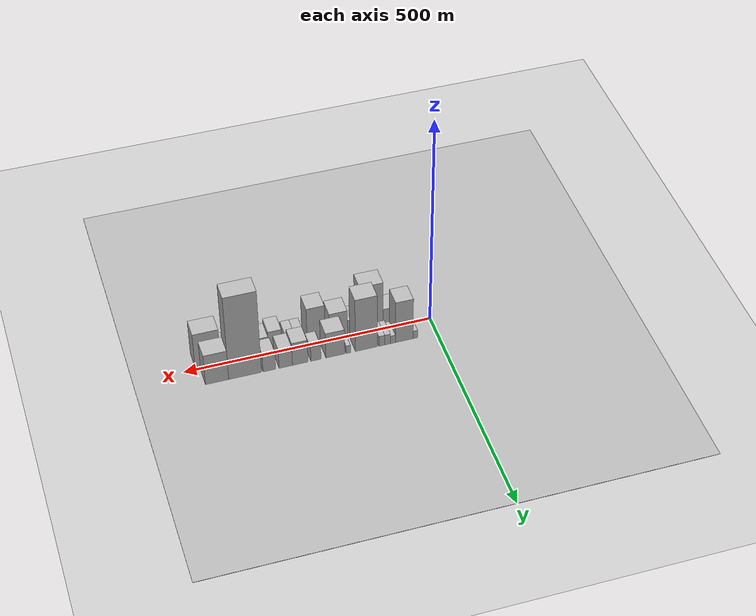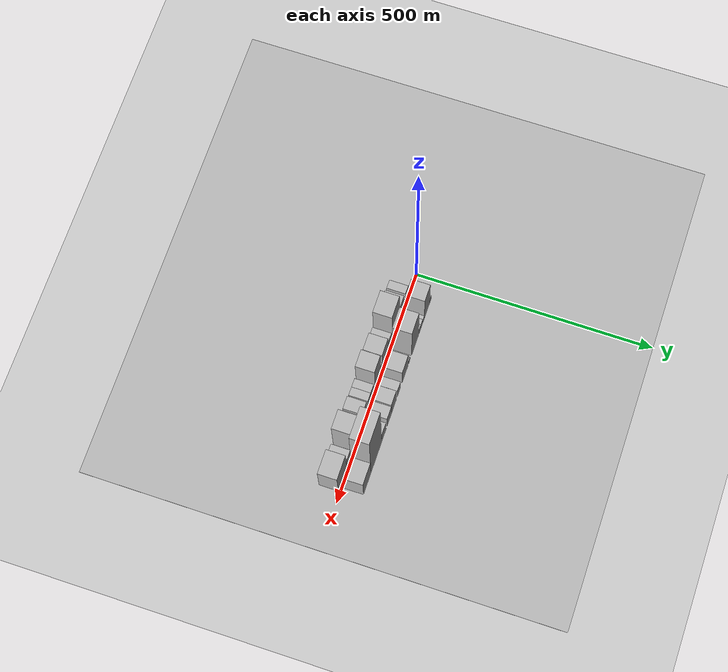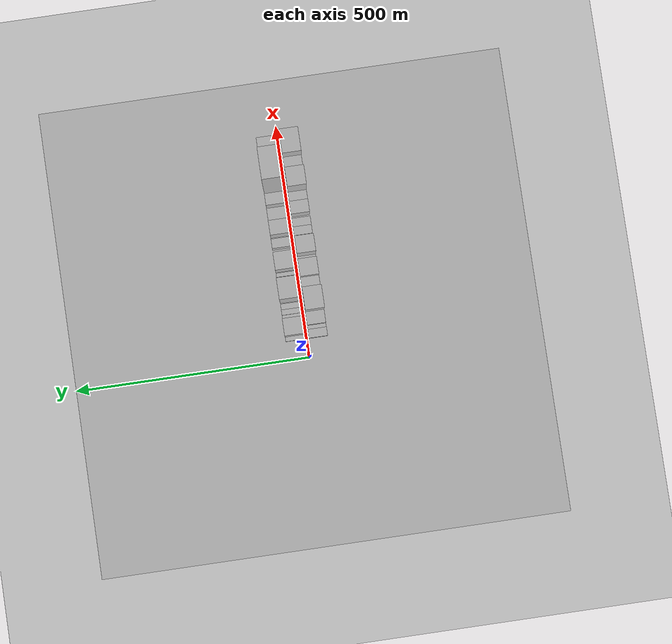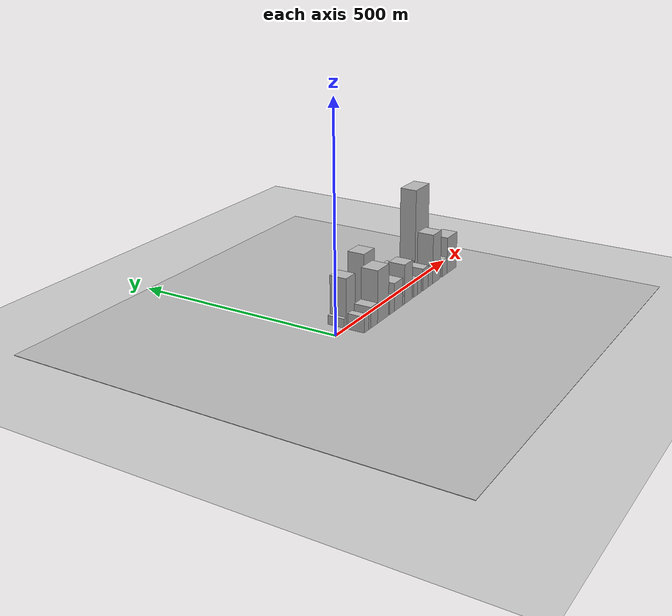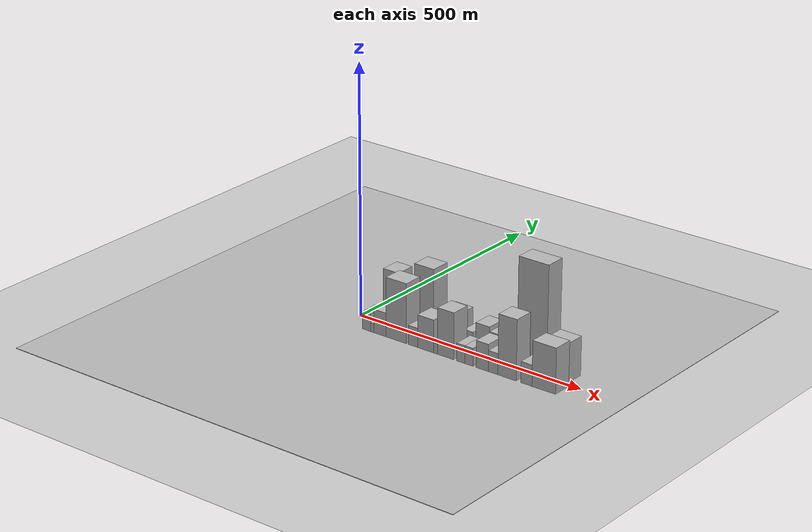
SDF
<?xml version="1.0" encoding="utf-8"?>

<sdf version="1.6">

   <world name="default">

      <gui fullscreen="0">

         <camera name="user_camera">

            <pose>-15 0 4.57585 0 0 0</pose>

            <view_controller>orbit</view_controller>

         </camera>

      </gui>

      <scene>

         <sky>

           <clouds>

             <speed>12</speed>

           </clouds>

         </sky>

         <ambient>0.4 0.4 0.4 1</ambient>

         <background>0.7 0.7 0.7 1</background>

         <shadows>1</shadows>

      </scene>

      <gravity>0 0 -9.8066</gravity>

      <magnetic_field>6e-06 2.3e-05 -4.2e-05</magnetic_field>

      <physics default="0" name="default_physics" type="ode">

         <ode>

            <solver>

               <type>quick</type>

               <iters>10</iters>

               <sor>1.0</sor>

               <use_dynamic_moi_rescaling>0</use_dynamic_moi_rescaling>

            </solver>

            <constraints>

               <cfm>0</cfm>

               <erp>0.2</erp>

               <contact_max_correcting_vel>100</contact_max_correcting_vel>

               <contact_surface_layer>0.001</contact_surface_layer>

            </constraints>

         </ode>

         <max_step_size>0.004</max_step_size>

         <real_time_factor>1</real_time_factor>

         <real_time_update_rate>250</real_time_update_rate>

      </physics>

      <light name="sun" type="directional">

         <cast_shadows>1</cast_shadows>

         <pose>0 0 10 0 0 0</pose>

         <diffuse>0.8 0.8 0.8 1</diffuse>

         <specular>0.2 0.2 0.2 1</specular>

         <attenuation>

            <range>1000</range>

            <constant>0.9</constant>

            <linear>0.01</linear>

            <quadratic>0.001</quadratic>

         </attenuation>

         <direction>-0.5 0.1 -0.9</direction>

      </light>

      <include>

         <name>ground_plane_1</name>

         <uri>model://HANNAS_ground_plane</uri>

         <pose>0 0 0  0 0 0</pose>

      </include>

      <include>

         <name>ground_plane_2</name>

         <uri>model://HANNAS_ground_plane</uri>

         <pose>100 0 0  0 0 0</pose>

      </include>

      <model name="building_1">

         <static>1</static>

         <pose frame="">44.8258 24.5000 0 0.000000 0.000000 1.570796</pose>

         <link name="link">

            <pose frame="">0 0 10.50 0 0 0</pose>

            <collision name="collision">

               <geometry>

                  <box>

                     <size>40.0000 9.6516 21.0000</size>

                  </box>

               </geometry>

               <max_contacts>10</max_contacts>

               <surface>

                  <contact>

                     <ode/>

                  </contact>

                  <bounce/>

                  <friction>

                     <torsional>

                        <ode/>

                     </torsional>

                     <ode/>

                  </friction>

               </surface>

            </collision>

            <visual name="visual">

               <cast_shadows>0</cast_shadows>

               <geometry>

                  <box>

                     <size>40.0000 9.6516 21.0000</size>

                  </box>

               </geometry>

               <material>

                  <script>

                     <uri>model://HANNAS_wall/materials/scripts</uri>

                     <uri>model://HANNAS_wall/materials/textures</uri>

                     <name>vrc/HANNAS_wall</name>

                  </script>

               </material>

            </visual>

            <self_collide>0</self_collide>

            <enable_wind>0</enable_wind>

            <kinematic>0</kinematic>

         </link>

      </model>

      <model name="building_2">

         <static>1</static>

         <pose frame="">67.6785 24.5000 0 0.000000 0.000000 1.570796</pose>

         <link name="link">

            <pose frame="">0 0 54.00 0 0 0</pose>

            <collision name="collision">

               <geometry>

                  <box>

                     <size>40.0000 36.0537 108.0000</size>

                  </box>

               </geometry>

               <max_contacts>10</max_contacts>

               <surface>

                  <contact>

                     <ode/>

                  </contact>

                  <bounce/>

                  <friction>

                     <torsional>

                        <ode/>

                     </torsional>

                     <ode/>

                  </friction>

               </surface>

            </collision>

            <visual name="visual">

               <cast_shadows>0</cast_shadows>

               <geometry>

                  <box>

                     <size>40.0000 36.0537 108.0000</size>

                  </box>

               </geometry>

               <material>

                  <script>

                     <uri>model://HANNAS_wall/materials/scripts</uri>

                     <uri>model://HANNAS_wall/materials/textures</uri>

                     <name>vrc/HANNAS_wall</name>

                  </script>

               </material>

            </visual>

            <self_collide>0</self_collide>

            <enable_wind>0</enable_wind>

            <kinematic>0</kinematic>

         </link>

      </model>

      <model name="building_3">

         <static>1</static>

         <pose frame="">90.7869 24.5000 0 0.000000 0.000000 1.570796</pose>

         <link name="link">

            <pose frame="">0 0 10.50 0 0 0</pose>

            <collision name="collision">

               <geometry>

                  <box>

                     <size>40.0000 10.1631 21.0000</size>

                  </box>

               </geometry>

               <max_contacts>10</max_contacts>

               <surface>

                  <contact>

                     <ode/>

                  </contact>

                  <bounce/>

                  <friction>

                     <torsional>

                        <ode/>

                     </torsional>

                     <ode/>

                  </friction>

               </surface>

            </collision>

            <visual name="visual">

               <cast_shadows>0</cast_shadows>

               <geometry>

                  <box>

                     <size>40.0000 10.1631 21.0000</size>

                  </box>

               </geometry>

               <material>

                  <script>

                     <uri>model://HANNAS_wall/materials/scripts</uri>

                     <uri>model://HANNAS_wall/materials/textures</uri>

                     <name>vrc/HANNAS_wall</name>

                  </script>

               </material>

            </visual>

            <self_collide>0</self_collide>

            <enable_wind>0</enable_wind>

            <kinematic>0</kinematic>

         </link>

      </model>

      <model name="building_4">

         <static>1</static>

         <pose frame="">101.6792 24.5000 0 0.000000 0.000000 1.570796</pose>

         <link name="link">

            <pose frame="">0 0 13.50 0 0 0</pose>

            <collision name="collision">

               <geometry>

                  <box>

                     <size>40.0000 11.6215 27.0000</size>

                  </box>

               </geometry>

               <max_contacts>10</max_contacts>

               <surface>

                  <contact>

                     <ode/>

                  </contact>

                  <bounce/>

                  <friction>

                     <torsional>

                        <ode/>

                     </torsional>

                     <ode/>

                  </friction>

               </surface>

            </collision>

            <visual name="visual">

               <cast_shadows>0</cast_shadows>

               <geometry>

                  <box>

                     <size>40.0000 11.6215 27.0000</size>

                  </box>

               </geometry>

               <material>

                  <script>

                     <uri>model://HANNAS_wall/materials/scripts</uri>

                     <uri>model://HANNAS_wall/materials/textures</uri>

                     <name>vrc/HANNAS_wall</name>

                  </script>

               </material>

            </visual>

            <self_collide>0</self_collide>

            <enable_wind>0</enable_wind>

            <kinematic>0</kinematic>

         </link>

      </model>

      <model name="building_5">

         <static>1</static>

         <pose frame="">113.6233 24.5000 0 0.000000 0.000000 1.570796</pose>

         <link name="link">

            <pose frame="">0 0 13.50 0 0 0</pose>

            <collision name="collision">

               <geometry>

                  <box>

                     <size>40.0000 12.2667 27.0000</size>

                  </box>

               </geometry>

               <max_contacts>10</max_contacts>

               <surface>

                  <contact>

                     <ode/>

                  </contact>

                  <bounce/>

                  <friction>

                     <torsional>

                        <ode/>

                     </torsional>

                     <ode/>

                  </friction>

               </surface>

            </collision>

            <visual name="visual">

               <cast_shadows>0</cast_shadows>

               <geometry>

                  <box>

                     <size>40.0000 12.2667 27.0000</size>

                  </box>

               </geometry>

               <material>

                  <script>

                     <uri>model://HANNAS_wall/materials/scripts</uri>

                     <uri>model://HANNAS_wall/materials/textures</uri>

                     <name>vrc/HANNAS_wall</name>

                  </script>

               </material>

            </visual>

            <self_collide>0</self_collide>

            <enable_wind>0</enable_wind>

            <kinematic>0</kinematic>

         </link>

      </model>

      <model name="building_6">

         <static>1</static>

         <pose frame="">145.1281 24.5000 0 0.000000 0.000000 1.570796</pose>

         <link name="link">

            <pose frame="">0 0 69.00 0 0 0</pose>

            <collision name="collision">

               <geometry>

                  <box>

                     <size>40.0000 44.7430 138.0000</size>

                  </box>

               </geometry>

               <max_contacts>10</max_contacts>

               <surface>

                  <contact>

                     <ode/>

                  </contact>

                  <bounce/>

                  <friction>

                     <torsional>

                        <ode/>

                     </torsional>

                     <ode/>

                  </friction>

               </surface>

            </collision>

            <visual name="visual">

               <cast_shadows>0</cast_shadows>

               <geometry>

                  <box>

                     <size>40.0000 44.7430 138.0000</size>

                  </box>

               </geometry>

               <material>

                  <script>

                     <uri>model://HANNAS_wall/materials/scripts</uri>

                     <uri>model://HANNAS_wall/materials/textures</uri>

                     <name>vrc/HANNAS_wall</name>

                  </script>

               </material>

            </visual>

            <self_collide>0</self_collide>

            <enable_wind>0</enable_wind>

            <kinematic>0</kinematic>

         </link>

      </model>

      <model name="building_7">

         <static>1</static>

         <pose frame="">181.8102 24.5000 0 0.000000 0.000000 1.570796</pose>

         <link name="link">

            <pose frame="">0 0 10.50 0 0 0</pose>

            <collision name="collision">

               <geometry>

                  <box>

                     <size>40.0000 8.6211 21.0000</size>

                  </box>

               </geometry>

               <max_contacts>10</max_contacts>

               <surface>

                  <contact>

                     <ode/>

                  </contact>

                  <bounce/>

                  <friction>

                     <torsional>

                        <ode/>

                     </torsional>

                     <ode/>

                  </friction>

               </surface>

            </collision>

            <visual name="visual">

               <cast_shadows>0</cast_shadows>

               <geometry>

                  <box>

                     <size>40.0000 8.6211 21.0000</size>

                  </box>

               </geometry>

               <material>

                  <script>

                     <uri>model://HANNAS_wall/materials/scripts</uri>

                     <uri>model://HANNAS_wall/materials/textures</uri>

                     <name>vrc/HANNAS_wall</name>

                  </script>

               </material>

            </visual>

            <self_collide>0</self_collide>

            <enable_wind>0</enable_wind>

            <kinematic>0</kinematic>

         </link>

      </model>

      <model name="building_8">

         <static>1</static>

         <pose frame="">208.2457 24.5000 0 0.000000 0.000000 1.570796</pose>

         <link name="link">

            <pose frame="">0 0 33.00 0 0 0</pose>

            <collision name="collision">

               <geometry>

                  <box>

                     <size>40.0000 38.2499 66.0000</size>

                  </box>

               </geometry>

               <max_contacts>10</max_contacts>

               <surface>

                  <contact>

                     <ode/>

                  </contact>

                  <bounce/>

                  <friction>

                     <torsional>

                        <ode/>

                     </torsional>

                     <ode/>

                  </friction>

               </surface>

            </collision>

            <visual name="visual">

               <cast_shadows>0</cast_shadows>

               <geometry>

                  <box>

                     <size>40.0000 38.2499 66.0000</size>

                  </box>

               </geometry>

               <material>

                  <script>

                     <uri>model://HANNAS_wall/materials/scripts</uri>

                     <uri>model://HANNAS_wall/materials/textures</uri>

                     <name>vrc/HANNAS_wall</name>

                  </script>

               </material>

            </visual>

            <self_collide>0</self_collide>

            <enable_wind>0</enable_wind>

            <kinematic>0</kinematic>

         </link>

      </model>

      <model name="building_9">

         <static>1</static>

         <pose frame="">247.5432 24.5000 0 0.000000 0.000000 1.570796</pose>

         <link name="link">

            <pose frame="">0 0 19.50 0 0 0</pose>

            <collision name="collision">

               <geometry>

                  <box>

                     <size>40.0000 20.3453 39.0000</size>

                  </box>

               </geometry>

               <max_contacts>10</max_contacts>

               <surface>

                  <contact>

                     <ode/>

                  </contact>

                  <bounce/>

                  <friction>

                     <torsional>

                        <ode/>

                     </torsional>

                     <ode/>

                  </friction>

               </surface>

            </collision>

            <visual name="visual">

               <cast_shadows>0</cast_shadows>

               <geometry>

                  <box>

                     <size>40.0000 20.3453 39.0000</size>

                  </box>

               </geometry>

               <material>

                  <script>

                     <uri>model://HANNAS_wall/materials/scripts</uri>

                     <uri>model://HANNAS_wall/materials/textures</uri>

                     <name>vrc/HANNAS_wall</name>

                  </script>

               </material>

            </visual>

            <self_collide>0</self_collide>

            <enable_wind>0</enable_wind>

            <kinematic>0</kinematic>

         </link>

      </model>

      <model name="building_10">

         <static>1</static>

         <pose frame="">279.2989 24.5000 0 0.000000 0.000000 1.570796</pose>

         <link name="link">

            <pose frame="">0 0 30.00 0 0 0</pose>

            <collision name="collision">

               <geometry>

                  <box>

                     <size>40.0000 31.1660 60.0000</size>

                  </box>

               </geometry>

               <max_contacts>10</max_contacts>

               <surface>

                  <contact>

                     <ode/>

                  </contact>

                  <bounce/>

                  <friction>

                     <torsional>

                        <ode/>

                     </torsional>

                     <ode/>

                  </friction>

               </surface>

            </collision>

            <visual name="visual">

               <cast_shadows>0</cast_shadows>

               <geometry>

                  <box>

                     <size>40.0000 31.1660 60.0000</size>

                  </box>

               </geometry>

               <material>

                  <script>

                     <uri>model://HANNAS_wall/materials/scripts</uri>

                     <uri>model://HANNAS_wall/materials/textures</uri>

                     <name>vrc/HANNAS_wall</name>

                  </script>

               </material>

            </visual>

            <self_collide>0</self_collide>

            <enable_wind>0</enable_wind>

            <kinematic>0</kinematic>

         </link>

      </model>

      <model name="building_11">

         <static>1</static>

         <pose frame="">308.2212 24.5000 0 0.000000 0.000000 1.570796</pose>

         <link name="link">

            <pose frame="">0 0 25.50 0 0 0</pose>

            <collision name="collision">

               <geometry>

                  <box>

                     <size>40.0000 26.6787 51.0000</size>

                  </box>

               </geometry>

               <max_contacts>10</max_contacts>

               <surface>

                  <contact>

                     <ode/>

                  </contact>

                  <bounce/>

                  <friction>

                     <torsional>

                        <ode/>

                     </torsional>

                     <ode/>

                  </friction>

               </surface>

            </collision>

            <visual name="visual">

               <cast_shadows>0</cast_shadows>

               <geometry>

                  <box>

                     <size>40.0000 26.6787 51.0000</size>

                  </box>

               </geometry>

               <material>

                  <script>

                     <uri>model://HANNAS_wall/materials/scripts</uri>

                     <uri>model://HANNAS_wall/materials/textures</uri>

                     <name>vrc/HANNAS_wall</name>

                  </script>

               </material>

            </visual>

            <self_collide>0</self_collide>

            <enable_wind>0</enable_wind>

            <kinematic>0</kinematic>

         </link>

      </model>

      <model name="building_12">

         <static>1</static>

         <pose frame="">341.1226 24.5000 0 0.000000 0.000000 1.570796</pose>

         <link name="link">

            <pose frame="">0 0 24.00 0 0 0</pose>

            <collision name="collision">

               <geometry>

                  <box>

                     <size>40.0000 25.1239 48.0000</size>

                  </box>

               </geometry>

               <max_contacts>10</max_contacts>

               <surface>

                  <contact>

                     <ode/>

                  </contact>

                  <bounce/>

                  <friction>

                     <torsional>

                        <ode/>

                     </torsional>

                     <ode/>

                  </friction>

               </surface>

            </collision>

            <visual name="visual">

               <cast_shadows>0</cast_shadows>

               <geometry>

                  <box>

                     <size>40.0000 25.1239 48.0000</size>

                  </box>

               </geometry>

               <material>

                  <script>

                     <uri>model://HANNAS_wall/materials/scripts</uri>

                     <uri>model://HANNAS_wall/materials/textures</uri>

                     <name>vrc/HANNAS_wall</name>

                  </script>

               </material>

            </visual>

            <self_collide>0</self_collide>

            <enable_wind>0</enable_wind>

            <kinematic>0</kinematic>

         </link>

      </model>

      <model name="building_13">

         <static>1</static>

         <pose frame="">389.2262 24.5000 0 0.000000 0.000000 1.570796</pose>

         <link name="link">

            <pose frame="">0 0 108.00 0 0 0</pose>

            <collision name="collision">

               <geometry>

                  <box>

                     <size>40.0000 65.0833 216.0000</size>

                  </box>

               </geometry>

               <max_contacts>10</max_contacts>

               <surface>

                  <contact>

                     <ode/>

                  </contact>

                  <bounce/>

                  <friction>

                     <torsional>

                        <ode/>

                     </torsional>

                     <ode/>

                  </friction>

               </surface>

            </collision>

            <visual name="visual">

               <cast_shadows>0</cast_shadows>

               <geometry>

                  <box>

                     <size>40.0000 65.0833 216.0000</size>

                  </box>

               </geometry>

               <material>

                  <script>

                     <uri>model://HANNAS_wall/materials/scripts</uri>

                     <uri>model://HANNAS_wall/materials/textures</uri>

                     <name>vrc/HANNAS_wall</name>

                  </script>

               </material>

            </visual>

            <self_collide>0</self_collide>

            <enable_wind>0</enable_wind>

            <kinematic>0</kinematic>

         </link>

      </model>

      <model name="building_14">

         <static>1</static>

         <pose frame="">444.6479 24.5000 0 0.000000 0.000000 1.570796</pose>

         <link name="link">

            <pose frame="">0 0 39.00 0 0 0</pose>

            <collision name="collision">

               <geometry>

                  <box>

                     <size>40.0000 45.7600 78.0000</size>

                  </box>

               </geometry>

               <max_contacts>10</max_contacts>

               <surface>

                  <contact>

                     <ode/>

                  </contact>

                  <bounce/>

                  <friction>

                     <torsional>

                        <ode/>

                     </torsional>

                     <ode/>

                  </friction>

               </surface>

            </collision>

            <visual name="visual">

               <cast_shadows>0</cast_shadows>

               <geometry>

                  <box>

                     <size>40.0000 45.7600 78.0000</size>

                  </box>

               </geometry>

               <material>

                  <script>

                     <uri>model://HANNAS_wall/materials/scripts</uri>

                     <uri>model://HANNAS_wall/materials/textures</uri>

                     <name>vrc/HANNAS_wall</name>

                  </script>

               </material>

            </visual>

            <self_collide>0</self_collide>

            <enable_wind>0</enable_wind>

            <kinematic>0</kinematic>

         </link>

      </model>

      <model name="building_15">

         <static>1</static>

         <pose frame="">49.2387 -24.5000 0 0.000000 0.000000 1.570796</pose>

         <link name="link">

            <pose frame="">0 0 18.00 0 0 0</pose>

            <collision name="collision">

               <geometry>

                  <box>

                     <size>40.0000 18.4774 36.0000</size>

                  </box>

               </geometry>

               <max_contacts>10</max_contacts>

               <surface>

                  <contact>

                     <ode/>

                  </contact>

                  <bounce/>

                  <friction>

                     <torsional>

                        <ode/>

                     </torsional>

                     <ode/>

                  </friction>

               </surface>

            </collision>

            <visual name="visual">

               <cast_shadows>0</cast_shadows>

               <geometry>

                  <box>

                     <size>40.0000 18.4774 36.0000</size>

                  </box>

               </geometry>

               <material>

                  <script>

                     <uri>model://HANNAS_wall/materials/scripts</uri>

                     <uri>model://HANNAS_wall/materials/textures</uri>

                     <name>vrc/HANNAS_wall</name>

                  </script>

               </material>

            </visual>

            <self_collide>0</self_collide>

            <enable_wind>0</enable_wind>

            <kinematic>0</kinematic>

         </link>

      </model>

      <model name="building_16">

         <static>1</static>

         <pose frame="">62.8807 -24.5000 0 0.000000 0.000000 1.570796</pose>

         <link name="link">

            <pose frame="">0 0 9.00 0 0 0</pose>

            <collision name="collision">

               <geometry>

                  <box>

                     <size>40.0000 8.8067 18.0000</size>

                  </box>

               </geometry>

               <max_contacts>10</max_contacts>

               <surface>

                  <contact>

                     <ode/>

                  </contact>

                  <bounce/>

                  <friction>

                     <torsional>

                        <ode/>

                     </torsional>

                     <ode/>

                  </friction>

               </surface>

            </collision>

            <visual name="visual">

               <cast_shadows>0</cast_shadows>

               <geometry>

                  <box>

                     <size>40.0000 8.8067 18.0000</size>

                  </box>

               </geometry>

               <material>

                  <script>

                     <uri>model://HANNAS_wall/materials/scripts</uri>

                     <uri>model://HANNAS_wall/materials/textures</uri>

                     <name>vrc/HANNAS_wall</name>

                  </script>

               </material>

            </visual>

            <self_collide>0</self_collide>

            <enable_wind>0</enable_wind>

            <kinematic>0</kinematic>

         </link>

      </model>

      <model name="building_17">

         <static>1</static>

         <pose frame="">81.3269 -24.5000 0 0.000000 0.000000 1.570796</pose>

         <link name="link">

            <pose frame="">0 0 24.00 0 0 0</pose>

            <collision name="collision">

               <geometry>

                  <box>

                     <size>40.0000 28.0857 48.0000</size>

                  </box>

               </geometry>

               <max_contacts>10</max_contacts>

               <surface>

                  <contact>

                     <ode/>

                  </contact>

                  <bounce/>

                  <friction>

                     <torsional>

                        <ode/>

                     </torsional>

                     <ode/>

                  </friction>

               </surface>

            </collision>

            <visual name="visual">

               <cast_shadows>0</cast_shadows>

               <geometry>

                  <box>

                     <size>40.0000 28.0857 48.0000</size>

                  </box>

               </geometry>

               <material>

                  <script>

                     <uri>model://HANNAS_wall/materials/scripts</uri>

                     <uri>model://HANNAS_wall/materials/textures</uri>

                     <name>vrc/HANNAS_wall</name>

                  </script>

               </material>

            </visual>

            <self_collide>0</self_collide>

            <enable_wind>0</enable_wind>

            <kinematic>0</kinematic>

         </link>

      </model>

      <model name="building_18">

         <static>1</static>

         <pose frame="">119.2250 -24.5000 0 0.000000 0.000000 1.570796</pose>

         <link name="link">

            <pose frame="">0 0 60.00 0 0 0</pose>

            <collision name="collision">

               <geometry>

                  <box>

                     <size>40.0000 47.7105 120.0000</size>

                  </box>

               </geometry>

               <max_contacts>10</max_contacts>

               <surface>

                  <contact>

                     <ode/>

                  </contact>

                  <bounce/>

                  <friction>

                     <torsional>

                        <ode/>

                     </torsional>

                     <ode/>

                  </friction>

               </surface>

            </collision>

            <visual name="visual">

               <cast_shadows>0</cast_shadows>

               <geometry>

                  <box>

                     <size>40.0000 47.7105 120.0000</size>

                  </box>

               </geometry>

               <material>

                  <script>

                     <uri>model://HANNAS_wall/materials/scripts</uri>

                     <uri>model://HANNAS_wall/materials/textures</uri>

                     <name>vrc/HANNAS_wall</name>

                  </script>

               </material>

            </visual>

            <self_collide>0</self_collide>

            <enable_wind>0</enable_wind>

            <kinematic>0</kinematic>

         </link>

      </model>

      <model name="building_19">

         <static>1</static>

         <pose frame="">157.9146 -24.5000 0 0.000000 0.000000 1.570796</pose>

         <link name="link">

            <pose frame="">0 0 19.50 0 0 0</pose>

            <collision name="collision">

               <geometry>

                  <box>

                     <size>40.0000 21.6686 39.0000</size>

                  </box>

               </geometry>

               <max_contacts>10</max_contacts>

               <surface>

                  <contact>

                     <ode/>

                  </contact>

                  <bounce/>

                  <friction>

                     <torsional>

                        <ode/>

                     </torsional>

                     <ode/>

                  </friction>

               </surface>

            </collision>

            <visual name="visual">

               <cast_shadows>0</cast_shadows>

               <geometry>

                  <box>

                     <size>40.0000 21.6686 39.0000</size>

                  </box>

               </geometry>

               <material>

                  <script>

                     <uri>model://HANNAS_wall/materials/scripts</uri>

                     <uri>model://HANNAS_wall/materials/textures</uri>

                     <name>vrc/HANNAS_wall</name>

                  </script>

               </material>

            </visual>

            <self_collide>0</self_collide>

            <enable_wind>0</enable_wind>

            <kinematic>0</kinematic>

         </link>

      </model>

      <model name="building_20">

         <static>1</static>

         <pose frame="">187.3209 -24.5000 0 0.000000 0.000000 1.570796</pose>

         <link name="link">

            <pose frame="">0 0 33.00 0 0 0</pose>

            <collision name="collision">

               <geometry>

                  <box>

                     <size>40.0000 37.1441 66.0000</size>

                  </box>

               </geometry>

               <max_contacts>10</max_contacts>

               <surface>

                  <contact>

                     <ode/>

                  </contact>

                  <bounce/>

                  <friction>

                     <torsional>

                        <ode/>

                     </torsional>

                     <ode/>

                  </friction>

               </surface>

            </collision>

            <visual name="visual">

               <cast_shadows>0</cast_shadows>

               <geometry>

                  <box>

                     <size>40.0000 37.1441 66.0000</size>

                  </box>

               </geometry>

               <material>

                  <script>

                     <uri>model://HANNAS_wall/materials/scripts</uri>

                     <uri>model://HANNAS_wall/materials/textures</uri>

                     <name>vrc/HANNAS_wall</name>

                  </script>

               </material>

            </visual>

            <self_collide>0</self_collide>

            <enable_wind>0</enable_wind>

            <kinematic>0</kinematic>

         </link>

      </model>

      <model name="building_21">

         <static>1</static>

         <pose frame="">210.2502 -24.5000 0 0.000000 0.000000 1.570796</pose>

         <link name="link">

            <pose frame="">0 0 10.50 0 0 0</pose>

            <collision name="collision">

               <geometry>

                  <box>

                     <size>40.0000 8.7144 21.0000</size>

                  </box>

               </geometry>

               <max_contacts>10</max_contacts>

               <surface>

                  <contact>

                     <ode/>

                  </contact>

                  <bounce/>

                  <friction>

                     <torsional>

                        <ode/>

                     </torsional>

                     <ode/>

                  </friction>

               </surface>

            </collision>

            <visual name="visual">

               <cast_shadows>0</cast_shadows>

               <geometry>

                  <box>

                     <size>40.0000 8.7144 21.0000</size>

                  </box>

               </geometry>

               <material>

                  <script>

                     <uri>model://HANNAS_wall/materials/scripts</uri>

                     <uri>model://HANNAS_wall/materials/textures</uri>

                     <name>vrc/HANNAS_wall</name>

                  </script>

               </material>

            </visual>

            <self_collide>0</self_collide>

            <enable_wind>0</enable_wind>

            <kinematic>0</kinematic>

         </link>

      </model>

      <model name="building_22">

         <static>1</static>

         <pose frame="">232.9640 -24.5000 0 0.000000 0.000000 1.570796</pose>

         <link name="link">

            <pose frame="">0 0 46.50 0 0 0</pose>

            <collision name="collision">

               <geometry>

                  <box>

                     <size>40.0000 36.7133 93.0000</size>

                  </box>

               </geometry>

               <max_contacts>10</max_contacts>

               <surface>

                  <contact>

                     <ode/>

                  </contact>

                  <bounce/>

                  <friction>

                     <torsional>

                        <ode/>

                     </torsional>

                     <ode/>

                  </friction>

               </surface>

            </collision>

            <visual name="visual">

               <cast_shadows>0</cast_shadows>

               <geometry>

                  <box>

                     <size>40.0000 36.7133 93.0000</size>

                  </box>

               </geometry>

               <material>

                  <script>

                     <uri>model://HANNAS_wall/materials/scripts</uri>

                     <uri>model://HANNAS_wall/materials/textures</uri>

                     <name>vrc/HANNAS_wall</name>

                  </script>

               </material>

            </visual>

            <self_collide>0</self_collide>

            <enable_wind>0</enable_wind>

            <kinematic>0</kinematic>

         </link>

      </model>

      <model name="building_23">

         <static>1</static>

         <pose frame="">267.5845 -24.5000 0 0.000000 0.000000 1.570796</pose>

         <link name="link">

            <pose frame="">0 0 18.00 0 0 0</pose>

            <collision name="collision">

               <geometry>

                  <box>

                     <size>40.0000 18.5277 36.0000</size>

                  </box>

               </geometry>

               <max_contacts>10</max_contacts>

               <surface>

                  <contact>

                     <ode/>

                  </contact>

                  <bounce/>

                  <friction>

                     <torsional>

                        <ode/>

                     </torsional>

                     <ode/>

                  </friction>

               </surface>

            </collision>

            <visual name="visual">

               <cast_shadows>0</cast_shadows>

               <geometry>

                  <box>

                     <size>40.0000 18.5277 36.0000</size>

                  </box>

               </geometry>

               <material>

                  <script>

                     <uri>model://HANNAS_wall/materials/scripts</uri>

                     <uri>model://HANNAS_wall/materials/textures</uri>

                     <name>vrc/HANNAS_wall</name>

                  </script>

               </material>

            </visual>

            <self_collide>0</self_collide>

            <enable_wind>0</enable_wind>

            <kinematic>0</kinematic>

         </link>

      </model>

      <model name="building_24">

         <static>1</static>

         <pose frame="">285.8888 -24.5000 0 0.000000 0.000000 1.570796</pose>

         <link name="link">

            <pose frame="">0 0 18.00 0 0 0</pose>

            <collision name="collision">

               <geometry>

                  <box>

                     <size>40.0000 18.0808 36.0000</size>

                  </box>

               </geometry>

               <max_contacts>10</max_contacts>

               <surface>

                  <contact>

                     <ode/>

                  </contact>

                  <bounce/>

                  <friction>

                     <torsional>

                        <ode/>

                     </torsional>

                     <ode/>

                  </friction>

               </surface>

            </collision>

            <visual name="visual">

               <cast_shadows>0</cast_shadows>

               <geometry>

                  <box>

                     <size>40.0000 18.0808 36.0000</size>

                  </box>

               </geometry>

               <material>

                  <script>

                     <uri>model://HANNAS_wall/materials/scripts</uri>

                     <uri>model://HANNAS_wall/materials/textures</uri>

                     <name>vrc/HANNAS_wall</name>

                  </script>

               </material>

            </visual>

            <self_collide>0</self_collide>

            <enable_wind>0</enable_wind>

            <kinematic>0</kinematic>

         </link>

      </model>

      <model name="building_25">

         <static>1</static>

         <pose frame="">315.5839 -24.5000 0 0.000000 0.000000 1.570796</pose>

         <link name="link">

            <pose frame="">0 0 27.00 0 0 0</pose>

            <collision name="collision">

               <geometry>

                  <box>

                     <size>40.0000 27.3094 54.0000</size>

                  </box>

               </geometry>

               <max_contacts>10</max_contacts>

               <surface>

                  <contact>

                     <ode/>

                  </contact>

                  <bounce/>

                  <friction>

                     <torsional>

                        <ode/>

                     </torsional>

                     <ode/>

                  </friction>

               </surface>

            </collision>

            <visual name="visual">

               <cast_shadows>0</cast_shadows>

               <geometry>

                  <box>

                     <size>40.0000 27.3094 54.0000</size>

                  </box>

               </geometry>

               <material>

                  <script>

                     <uri>model://HANNAS_wall/materials/scripts</uri>

                     <uri>model://HANNAS_wall/materials/textures</uri>

                     <name>vrc/HANNAS_wall</name>

                  </script>

               </material>

            </visual>

            <self_collide>0</self_collide>

            <enable_wind>0</enable_wind>

            <kinematic>0</kinematic>

         </link>

      </model>

      <model name="building_26">

         <static>1</static>

         <pose frame="">339.8416 -24.5000 0 0.000000 0.000000 1.570796</pose>

         <link name="link">

            <pose frame="">0 0 21.00 0 0 0</pose>

            <collision name="collision">

               <geometry>

                  <box>

                     <size>40.0000 21.2059 42.0000</size>

                  </box>

               </geometry>

               <max_contacts>10</max_contacts>

               <surface>

                  <contact>

                     <ode/>

                  </contact>

                  <bounce/>

                  <friction>

                     <torsional>

                        <ode/>

                     </torsional>

                     <ode/>

                  </friction>

               </surface>

            </collision>

            <visual name="visual">

               <cast_shadows>0</cast_shadows>

               <geometry>

                  <box>

                     <size>40.0000 21.2059 42.0000</size>

                  </box>

               </geometry>

               <material>

                  <script>

                     <uri>model://HANNAS_wall/materials/scripts</uri>

                     <uri>model://HANNAS_wall/materials/textures</uri>

                     <name>vrc/HANNAS_wall</name>

                  </script>

               </material>

            </visual>

            <self_collide>0</self_collide>

            <enable_wind>0</enable_wind>

            <kinematic>0</kinematic>

         </link>

      </model>

      <model name="building_27">

         <static>1</static>

         <pose frame="">370.6356 -24.5000 0 0.000000 0.000000 1.570796</pose>

         <link name="link">

            <pose frame="">0 0 60.00 0 0 0</pose>

            <collision name="collision">

               <geometry>

                  <box>

                     <size>40.0000 40.3822 120.0000</size>

                  </box>

               </geometry>

               <max_contacts>10</max_contacts>

               <surface>

                  <contact>

                     <ode/>

                  </contact>

                  <bounce/>

                  <friction>

                     <torsional>

                        <ode/>

                     </torsional>

                     <ode/>

                  </friction>

               </surface>

            </collision>

            <visual name="visual">

               <cast_shadows>0</cast_shadows>

               <geometry>

                  <box>

                     <size>40.0000 40.3822 120.0000</size>

                  </box>

               </geometry>

               <material>

                  <script>

                     <uri>model://HANNAS_wall/materials/scripts</uri>

                     <uri>model://HANNAS_wall/materials/textures</uri>

                     <name>vrc/HANNAS_wall</name>

                  </script>

               </material>

            </visual>

            <self_collide>0</self_collide>

            <enable_wind>0</enable_wind>

            <kinematic>0</kinematic>

         </link>

      </model>

      <model name="building_28">

         <static>1</static>

         <pose frame="">413.0892 -24.5000 0 0.000000 0.000000 1.570796</pose>

         <link name="link">

            <pose frame="">0 0 21.00 0 0 0</pose>

            <collision name="collision">

               <geometry>

                  <box>

                     <size>40.0000 24.5249 42.0000</size>

                  </box>

               </geometry>

               <max_contacts>10</max_contacts>

               <surface>

                  <contact>

                     <ode/>

                  </contact>

                  <bounce/>

                  <friction>

                     <torsional>

                        <ode/>

                     </torsional>

                     <ode/>

                  </friction>

               </surface>

            </collision>

            <visual name="visual">

               <cast_shadows>0</cast_shadows>

               <geometry>

                  <box>

                     <size>40.0000 24.5249 42.0000</size>

                  </box>

               </geometry>

               <material>

                  <script>

                     <uri>model://HANNAS_wall/materials/scripts</uri>

                     <uri>model://HANNAS_wall/materials/textures</uri>

                     <name>vrc/HANNAS_wall</name>

                  </script>

               </material>

            </visual>

            <self_collide>0</self_collide>

            <enable_wind>0</enable_wind>

            <kinematic>0</kinematic>

         </link>

      </model>

      <model name="building_29">

         <static>1</static>

         <pose frame="">450.8344 -24.5000 0 0.000000 0.000000 1.570796</pose>

         <link name="link">

            <pose frame="">0 0 45.00 0 0 0</pose>

            <collision name="collision">

               <geometry>

                  <box>

                     <size>40.0000 50.9655 90.0000</size>

                  </box>

               </geometry>

               <max_contacts>10</max_contacts>

               <surface>

                  <contact>

                     <ode/>

                  </contact>

                  <bounce/>

                  <friction>

                     <torsional>

                        <ode/>

                     </torsional>

                     <ode/>

                  </friction>

               </surface>

            </collision>

            <visual name="visual">

               <cast_shadows>0</cast_shadows>

               <geometry>

                  <box>

                     <size>40.0000 50.9655 90.0000</size>

                  </box>

               </geometry>

               <material>

                  <script>

                     <uri>model://HANNAS_wall/materials/scripts</uri>

                     <uri>model://HANNAS_wall/materials/textures</uri>

                     <name>vrc/HANNAS_wall</name>

                  </script>

               </material>

            </visual>

            <self_collide>0</self_collide>

            <enable_wind>0</enable_wind>

            <kinematic>0</kinematic>

         </link>

      </model>

   </world>

</sdf>

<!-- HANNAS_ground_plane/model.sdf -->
<sdf version="1.4">
<model name="HANNAS_ground_plane">
  <static>true</static>
    <link name="link">
      <collision name="collision">
        <geometry>
          <plane>
            <normal>0 0 1</normal>
            <size>1000 1000</size>
          </plane>
        </geometry>
        <surface>
          <friction>
            <ode>
              <mu>100</mu>
              <mu2>50</mu2>
            </ode>
          </friction>
        </surface>
      </collision>
      <visual name="visual">
        <cast_shadows>false</cast_shadows>
        <geometry>
          <plane>
            <normal>0 0 1</normal>
            <size>1000 1000</size>
          </plane>
        </geometry>
        <material>
          <script>
            <uri>model://HANNAS_ground_plane/materials/scripts/HANNAS_ground_plane.material</uri>
	    <uri>model://HANNAS_ground_plane/materials/textures</uri>
            <name>HANNASGroundPlane/Image</name>
          </script>
        </material>
      </visual>
    </link>
  </model>
</sdf>
